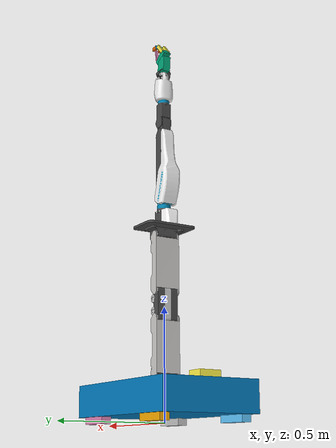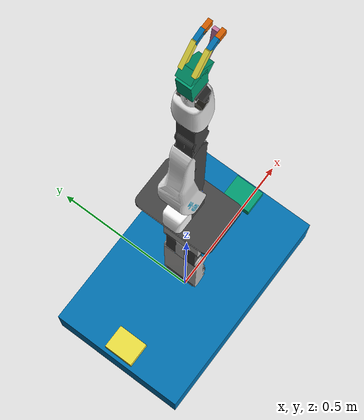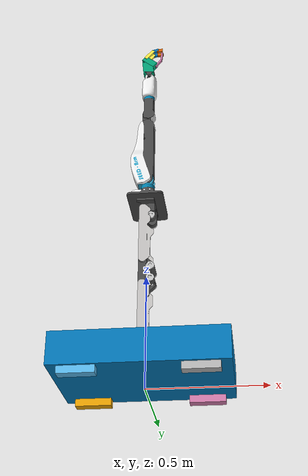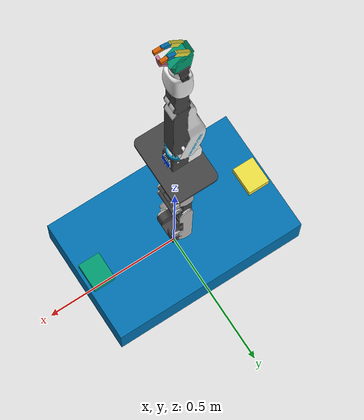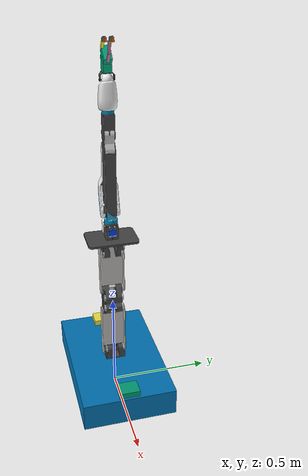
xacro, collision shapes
<?xml version="1.0"?>
<robot name="SEED-Arm-Mover-typeG2" xmlns:xacro="http://ros.org/wiki/xacro">

  <!-- The following included files set up definitions of parts of the robot body -->
  <!-- wraps upperbody and hand-->
  <xacro:include filename="$(find seed_r7_description)/typeg2_arm/arm-upper.urdf.xacro" />
  <!-- wraps lifter and wheels-->
  <xacro:include filename="$(find seed_r7_description)/typeg/noid-wheels.urdf.xacro" />

 <!-- Now we can start using the macros included above to define the actual robot -->
 <xacro:arm-upper/>
 <xacro:noid-wheels base_link="base_link"/>

<!-- gazebo settings -->
 <!-- camera -->
<xacro:property  name="camera_name" value="front_camera"/>
<link name="${camera_name}_depth_optical_frame"/>
<joint name="${camera_name}_depth_optical_joint" type="fixed">
  <origin xyz="0 0 0" rpy="${-M_PI/2} 0 ${-M_PI/2}" />
  <parent link="${camera_name}_link" />
  <child link="${camera_name}_depth_optical_frame" />
</joint>
<xacro:gazebo_depth_camera link_name="${camera_name}_link"
                      frame_name="${camera_name}_depth_optical_frame"
                      camera_name="${camera_name}"/>

<xacro:property  name="camera_name" value="rear_camera"/>
<link name="${camera_name}_depth_optical_frame"/>
<joint name="${camera_name}_depth_optical_joint" type="fixed">
  <origin xyz="0 0 0" rpy="${-M_PI/2} 0 ${-M_PI/2}" />
  <parent link="${camera_name}_link" />
  <child link="${camera_name}_depth_optical_frame" />
</joint>
<xacro:gazebo_depth_camera link_name="${camera_name}_link"
                      frame_name="${camera_name}_depth_optical_frame"
                      camera_name="${camera_name}"/>

 <!-- laser -->
 <xacro:gazebo_laser_sensor link_name="wheels_base_laser_link"
                            frame_name="wheels_base_laser_link" />

 <!-- joint control -->
 <xacro:gazebo_trajectory_controller />

 <!-- mobile base -->
 <xacro:gazebo_base_controller base_frame="base_link" />

 <!-- mimic joints -->
 <gazebo>
   <plugin name="mimic_updater" filename="libmimic_plugin.so">
     <!-- lifter -->
     <mimic joint="knee_joint"  offset="0.0" multiplier="-1.0"
            P="1000" I="0.01" D="1" i_max="0" i_min="0"
            command_max="50" command_min="-50" velocity="true">
       knee_joint_mimic
     </mimic>
     <mimic joint="ankle_joint"  offset="0.0" multiplier="-1.0"
            P="1000" I="0.01" D="1" i_max="0" i_min="0"
            command_max="50" command_min="-50" velocity="true">
       ankle_joint_mimic
     </mimic>
     <!-- lifter(dummy) -->
     <mimic joint="knee_joint"  offset="0.0" multiplier="-1.0"
            P="100" I="0.01" D="1" i_max="0" i_min="0"
            command_max="50" command_min="-50" velocity="true">
       knee_joint_dummy
     </mimic>
     <mimic joint="ankle_joint"  offset="0.0" multiplier="1.0"
            P="100" I="0.01" D="1" i_max="0" i_min="0"
            command_max="50" command_min="-50"  velocity="true">
       ankle_joint_dummy
     </mimic>
     <!-- hand -->
     <mimic joint="r_thumb_joint"  offset="0.0" multiplier="-1.0"
            P="10" I="0.0" D="1" i_max="0" i_min="0"
            command_max="50" command_min="-50" velocity="true">
       r_indexbase_joint
     </mimic>
    <!-- elbow -->
     <mimic joint="elbow_joint"  offset="0.0" multiplier="-1.0"
            P="10" I="0.01" D="1" i_max="0" i_min="-0"
            command_max="50" command_min="-50" velocity="true">
       elbow_joint_mimic
     </mimic>

     <mimic joint="elbow_joint"  offset="0.0" multiplier="0.591"
            P="10" I="0.01" D="1" i_max="0" i_min="-0"
            command_max="50" command_min="-50" velocity="true">
       elbow_middle_joint
     </mimic>

     <mimic joint="elbow_joint"  offset="0.0" multiplier="0.409"
            P="10" I="0.01" D="1" i_max="0" i_min="-0"
            command_max="50" command_min="-50" velocity="true">
       elbow_middle_joint_mimic
     </mimic>

   </plugin>
 </gazebo>

</robot>

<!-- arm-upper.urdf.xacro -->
<!-- XML namespaces -->
<robot name="arm-upper" xmlns:xacro="http://ros.org/wiki/xacro">

  <xacro:include filename="$(find seed_r7_description)/urdf/typeG2_arm/typeg2_arm.urdf.xacro" />
  <xacro:include filename="$(find seed_r7_description)/urdf/trx_s/trx_s.urdf.xacro" />

  <xacro:macro name="arm-upper" params="disable_mesh:=false">

  <xacro:arm_upper base_link="waist_link" r_hand_link="r_hand_link" disable_mesh="${disable_mesh}"/>

  <xacro:trx_s prefix="r" reflect="1" disable_mesh="${disable_mesh}"/>

  <joint name="upper_lower_connector" type="fixed">
    <parent link="lifter_top_link"/>
    <child link="waist_link"/>
    <origin xyz="0.0 0.0 0.0" rpy="0 0 0 "/>
  </joint>

  </xacro:macro>

</robot>

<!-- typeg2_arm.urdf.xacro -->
<!-- XML namespaces -->
<robot name="arm_upper" xmlns:xacro="http://ros.org/wiki/xacro">

  <xacro:include filename="$(find seed_r7_description)/urdf/gazebo.xacro" />

  <xacro:macro name="arm_upper" params="base_link disable_mesh:=false r_hand_link:=r_hand_link">
  <!-- ============================   typeG2_arm   ============================ -->
  <link name="${base_link}">
    <xacro:unless value="${disable_mesh}"> <visual>
      <origin xyz="0 0 0" rpy="0 0 0"/>
      <geometry>
        <mesh filename="package://seed_r7_description/meshes/typeG2_arm/waist_link.dae" scale="1 1 1" />
      </geometry>
    </visual> </xacro:unless>
    <xacro:unless value="${disable_mesh}"> <collision>
      <origin xyz="0 0 0" rpy="0 0 0"/>
      <geometry>
        <mesh filename="package://seed_r7_description/meshes/typeG2_arm/waist_link.dae" scale="1 1 1" />
      </geometry>
    </collision> </xacro:unless>
    <inertial>
      <mass value="1.585" />
      <origin xyz="-0.003 0 0.028" rpy="0 0 0"/>
      <inertia ixx="0.006" ixy="0" ixz="0" iyy="0.004" iyz="0" izz="0.006"/>
    </inertial>
  </link>
  <xacro:gazebo_link_reference link_name="${base_link}" />

  <link name="shoulder_link">
    <xacro:unless value="${disable_mesh}"> <visual>
      <origin xyz="0 0 0" rpy="0 0 0"/>
      <geometry>
        <mesh filename="package://seed_r7_description/meshes/typeG2_arm/shoulder_link.dae" scale="1 1 1" />
      </geometry>
    </visual> </xacro:unless>
    <xacro:unless value="${disable_mesh}"> <collision>
      <origin xyz="0 0 0" rpy="0 0 0"/>
      <geometry>
        <mesh filename="package://seed_r7_description/meshes/typeG2_arm/shoulder_link.dae" scale="1 1 1" />
      </geometry>
    </collision> </xacro:unless>
    <inertial>
      <mass value="0.264" />
      <origin xyz="-0.017 0 0.033" rpy="0 0 0"/>
      <inertia ixx="0.000166" ixy="0" ixz="0" iyy="0.000239" iyz="0" izz="0.000211"/>
    </inertial>
  </link>
  <xacro:gazebo_link_reference link_name="shoulder_link" />

  <link name="upperarm_link">
    <xacro:unless value="${disable_mesh}"> <visual>
      <origin xyz="0 0 0" rpy="0 0 0"/>
      <geometry>
        <mesh filename="package://seed_r7_description/meshes/typeG2_arm/upperarm_link.dae" scale="1 1 1" />
      </geometry>
    </visual> </xacro:unless>
    <xacro:unless value="${disable_mesh}"> <collision>
      <origin xyz="0 0 0" rpy="0 0 0"/>
      <geometry>
        <mesh filename="package://seed_r7_description/meshes/typeG2_arm/upperarm_link.dae" scale="1 1 1" />
      </geometry>
    </collision> </xacro:unless>
    <inertial>
     <mass value="1.766" />
      <origin xyz="-0.017 0 0.151" rpy="0 0 0"/>
      <inertia ixx="0.011" ixy="0" ixz="0" iyy="0.011" iyz="0" izz="0.001"/>
    </inertial>
  </link>
  <xacro:gazebo_link_reference link_name="upperarm_link" />

  <link name="elbow_virtual_link">
    <inertial>
      <mass value="0.001" />
      <origin xyz="0 0 0" rpy="0 0 0"/>
      <inertia ixx="0.00001" ixy="0" ixz="0" iyy="0.00001" iyz="0" izz="0.00001"/>
    </inertial>
  </link>
  <xacro:gazebo_link_reference link_name="elbow_virtual_link" />

  <link name="elbow_virtual_link_dummy">
    <inertial>
      <mass value="0.001" />
      <origin xyz="0 0 0" rpy="0 0 0"/>
      <inertia ixx="0.00001" ixy="0" ixz="0" iyy="0.00001" iyz="0" izz="0.00001"/>
    </inertial>
  </link>
  <xacro:gazebo_link_reference link_name="elbow_virtual_link_dummy" />

  <link name="elbow_middle_link">
    <xacro:unless value="${disable_mesh}"> <visual>
      <origin xyz="0 0 0" rpy="0 0 0"/>
      <geometry>
        <mesh filename="package://seed_r7_description/meshes/typeG2_arm/elbow_middle_link.dae" scale="1 1 1" />
      </geometry>
    </visual> </xacro:unless>
    <xacro:unless value="${disable_mesh}"> <collision>
      <origin xyz="0 0 0" rpy="0 0 0"/>
      <geometry>
        <mesh filename="package://seed_r7_description/meshes/typeG2_arm/elbow_middle_link.dae" scale="1 1 1" />
      </geometry>
    </collision> </xacro:unless>
    <inertial>
      <mass value="0.305" />
      <origin xyz="-0.010 0 0.025" rpy="0 0 0"/>
      <inertia ixx="0.000454" ixy="0" ixz="0" iyy="0.000451" iyz="0" izz="0.000141"/>
    </inertial>
  </link>
  <xacro:gazebo_link_reference link_name="elbow_middle_link" />

  <link name="elbow_link">
    <xacro:unless value="${disable_mesh}"> <visual>
      <origin xyz="0 0 0" rpy="0 0 0"/>
      <geometry>
        <mesh filename="package://seed_r7_description/meshes/typeG2_arm/elbow_link.dae" scale="1 1 1" />
      </geometry>
    </visual> </xacro:unless>
    <xacro:unless value="${disable_mesh}"> <collision>
      <origin xyz="0 0 0" rpy="0 0 0"/>
      <geometry>
        <mesh filename="package://seed_r7_description/meshes/typeG2_arm/elbow_link.dae" scale="1 1 1" />
      </geometry>
    </collision> </xacro:unless>
    <inertial>
      <mass value="0.470" />
      <origin xyz="0 0 0.069" rpy="0 0 0"/>
      <inertia ixx="0.000464" ixy="0" ixz="0" iyy="0.00045" iyz="0" izz="0.000168"/>
    </inertial>
  </link>
  <xacro:gazebo_link_reference link_name="elbow_link" />

  <link name="forearm_link">
    <parent link="forearm_link"/>
    <child  link="wrist_r_link"/>
    <xacro:unless value="${disable_mesh}"> <visual>
      <origin xyz="0 0 0" rpy="0 0 0"/>
      <geometry>
        <mesh filename="package://seed_r7_description/meshes/typeG2_arm/forearm_link.dae" scale="1 1 1" />
      </geometry>
    </visual> </xacro:unless>
    <xacro:unless value="${disable_mesh}"> <collision>
      <origin xyz="0 0 0" rpy="0 0 0"/>
      <geometry>
        <mesh filename="package://seed_r7_description/meshes/typeG2_arm/forearm_link.dae" scale="1 1 1" />
      </geometry>
    </collision> </xacro:unless>
    <inertial>
      <mass value="0.599" />
      <origin xyz="0 0 0.04" rpy="0 0 0"/>
      <inertia ixx="0.000739" ixy="0" ixz="0" iyy="0.000538" iyz="0" izz="0.000370"/>
    </inertial>
  </link>
  <xacro:gazebo_link_reference link_name="forearm_link" />

  <link name="wrist_r_link">
    <xacro:unless value="${disable_mesh}"> <visual>
      <origin xyz="0 0 0" rpy="0 0 0"/>
      <geometry>
        <mesh filename="package://seed_r7_description/meshes/typeG2_arm/wrist_r_link.dae" scale="1 1 1" />
      </geometry>
    </visual> </xacro:unless>
    <xacro:unless value="${disable_mesh}"> <collision>
      <origin xyz="0 0 0" rpy="0 0 0"/>
      <geometry>
        <mesh filename="package://seed_r7_description/meshes/typeG2_arm/wrist_r_link.dae" scale="1 1 1" />
      </geometry>
    </collision> </xacro:unless>
    <inertial>
      <mass value="0.012972" />
      <origin xyz="0 0 0" rpy="0 0 0"/>
      <inertia ixx="0.00001" ixy="0" ixz="0" iyy="0.00001" iyz="0" izz="0.00001"/>
    </inertial>
  </link>
  <xacro:gazebo_link_reference link_name="wrist_r_link" />

  <link name="wrist_p_link">
    <xacro:unless value="${disable_mesh}"> <visual>
      <origin xyz="0 0 0" rpy="0 0 0"/>
      <geometry>
        <mesh filename="package://seed_r7_description/meshes/typeG2_arm/wrist_p_link.dae" scale="1 1 1" />
      </geometry>
    </visual> </xacro:unless>
    <xacro:unless value="${disable_mesh}"> <collision>
      <origin xyz="0 0 0" rpy="0 0 0"/>
      <geometry>
        <mesh filename="package://seed_r7_description/meshes/typeG2_arm/wrist_p_link.dae" scale="1 1 1" />
      </geometry>
    </collision> </xacro:unless>
    <inertial>
      <mass value="0.022908" />
      <origin xyz="0 0 0.021" rpy="0 -0 0"/>
      <inertia ixx="0.00001" ixy="0" ixz="0" iyy="0.00001" iyz="0" izz="0.00001"/>
    </inertial>
  </link>
  <xacro:gazebo_link_reference link_name="wrist_p_link" />

  <joint name="shoulder_y_joint" type="revolute">
    <parent link="${base_link}"/>
    <child  link="shoulder_link"/>
    <origin xyz="0 0 0.1035" rpy="0 0 0 "/>
    <axis   xyz="0 0 1"/>-->
    <!-- from -120 to 120 degrees-->
    <limit lower="-2.09" upper="2.09" effort="10" velocity="1.2" />
    <dynamics damping="0.2" friction="0" />
  </joint>
  <xacro:gazebo_transmission joint_name="shoulder_y_joint" />

  <joint name="shoulder_p_joint" type="revolute">
    <parent link="shoulder_link"/>
    <child  link="upperarm_link"/>
    <origin xyz="0.0 0.0 0.028" rpy="0 0 0 "/>
    <axis   xyz="0 1 0"/>
    <!-- from 0 to 90 degrees-->
    <limit lower="0" upper="1.57" effort="10" velocity="0.6" />
    <dynamics damping="0.2" friction="0" />
  </joint>
  <xacro:gazebo_transmission joint_name="shoulder_p_joint" />

  <joint name="elbow_joint" type="revolute">
    <parent link="upperarm_link"/>
    <child  link="elbow_virtual_link"/>
    <origin xyz="0.0 0.0 0.3" rpy="0 0 0 "/>
    <axis   xyz="0 1 0"/>
    <!-- from 0 to 180 degrees-->
    <limit lower="0" upper="3.14" effort="10" velocity="1.2" />
    <dynamics damping="0.2" friction="0" />
  </joint>
  <xacro:gazebo_transmission joint_name="elbow_joint" />

  <joint name="elbow_joint_mimic" type="continuous">
    <parent link="elbow_virtual_link"/>
    <child  link="elbow_virtual_link_dummy"/>
    <origin xyz="0.0 0 0" rpy="0 0 0 "/>
    <axis   xyz="0 1 0"/>
    <mimic joint="elbow_joint" multiplier="-1" offset="0" />
  </joint>

  <joint name="elbow_middle_joint" type="continuous">
    <parent link="elbow_virtual_link_dummy"/>
    <child  link="elbow_middle_link"/>
    <origin xyz="0.0 0 0" rpy="0 0 0 "/>
    <axis   xyz="0 1 0"/>
    <mimic joint="elbow_joint" multiplier="0.5" offset="0" />
  </joint>

  <joint name="elbow_middle_joint_mimic" type="continuous">
    <parent link="elbow_middle_link"/>
    <child  link="elbow_link"/>
    <origin xyz="0.0 0 0.07" rpy="0 0 0 "/>
    <axis   xyz="0 1 0"/>
    <mimic joint="elbow_joint" multiplier="0.5" offset="0" />
  </joint>

  <joint name="wrist_y_joint" type="revolute">
    <parent link="elbow_link"/>
    <child  link="forearm_link"/>
    <origin xyz="0.0 0 0.1095" rpy="0 0 0 "/>
    <axis   xyz="0 0 1"/>
    <!-- from -120 to 120 degrees-->
    <limit lower="-2.09" upper="2.09" effort="10" velocity="1.3" />
    <dynamics damping="0.2" friction="0" />
  </joint>
  <xacro:gazebo_transmission joint_name="wrist_y_joint" />

  <joint name="wrist_r_joint" type="revolute">
    <parent link="forearm_link"/>
    <child  link="wrist_r_link"/>
    <origin xyz="0.0 0 0.120" rpy="0 0 0 "/>
    <axis   xyz="1 0 0"/>
    <!-- from -7 to 7 degrees-->
    <limit lower="-0.12" upper="0.12" effort="10" velocity="1.05" />
    <dynamics damping="0.2" friction="0" />
  </joint>
  <xacro:gazebo_transmission joint_name="wrist_r_joint" />

  <joint name="wrist_p_joint" type="revolute">
    <parent link="wrist_r_link"/>
    <child  link="wrist_p_link"/>
    <origin xyz="0 0 0" rpy="0 0 0 "/>
    <axis   xyz="0 1 0"/>
    <!-- from -90 to 20 degrees-->
    <limit lower="-1.57" upper="0.34" effort="10" velocity="1.4" />
    <dynamics damping="0.2" friction="0" />
  </joint>
  <xacro:gazebo_transmission joint_name="wrist_p_joint" />

  <joint name="wrist_connector" type="fixed">
    <parent link="wrist_p_link"/>
    <child  link="${r_hand_link}"/>
    <origin xyz="0 0 0.004" rpy="-3.141592 0 1.5707 "/>
  </joint>

  </xacro:macro>

</robot>

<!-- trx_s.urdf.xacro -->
<!-- XML namespaces -->
<robot name="trx_s" xmlns:xacro="http://ros.org/wiki/xacro">

  <xacro:property name="M_PI" value="3.1415926535897931" />
  <xacro:include filename="$(find seed_r7_description)/urdf/gazebo.xacro" />

  <xacro:macro name="trx_s" params="prefix:=r reflect:=1 disable_mesh:=false">
  <!-- ============================   Hand(trx_s)   ============================ -->
    <!-- prefix is "r" or "l" -->
    <!-- reflect=1 is rightside, reflect=-1 is leftside -->

  <link name="${prefix}_hand_link">
    <xacro:unless value="${disable_mesh}"> <visual>
      <origin xyz="0 0 0" rpy="0 -0 ${(1.0 - reflect) * M_PI / 2.0}"/>
      <geometry>
        <mesh filename="package://seed_r7_description/meshes/trx_s/RARM_LINK7_mesh.dae" scale="1 1 1" />
      </geometry>
    </visual> </xacro:unless>
    <xacro:unless value="${disable_mesh}">
    <collision>
      <origin rpy="${reflect * 0.7} 0 0" xyz="0 0 -0.093"/>
      <geometry>
        <box size="0.036 0.070 0.030" />
      </geometry>
    </collision>
    <collision>
      <origin rpy="${reflect * -0.10} 0 0" xyz="0 ${reflect * -0.007} -0.055"/>
      <geometry>
        <box size="0.036 0.050 0.070" />
      </geometry>
    </collision>
    </xacro:unless>
    <inertial>
      <mass value="0.183" />
      <origin xyz="0 0 -0.0875" rpy="0 -0 0"/>
      <inertia ixx="0.000601" ixy="0" ixz="0" iyy="0.00055" iyz="0" izz="0.000102"/>
    </inertial>
  </link>
  <xacro:gazebo_link_reference link_name="${prefix}_hand_link" />

  <link name="${prefix}_indexbase_link">
    <xacro:unless value="${disable_mesh}"> <visual>
      <origin xyz="0 ${0.013 * reflect} 0.115" rpy="0 -0 ${(1.0 - reflect) * M_PI / 2.0}"/>
      <geometry>
        <mesh filename="package://seed_r7_description/meshes/trx_s/RARM_INDEX_LINK1_mesh.dae" scale="1 1 1" />
      </geometry>
    </visual> </xacro:unless>
    <xacro:unless value="${disable_mesh}"> <collision>
      <origin xyz="0.015 ${reflect * 0.013494 } -0.021422" rpy="${reflect * -0.85} 0 0"/>
      <geometry>
        <box size="0.01 0.061 0.016" />
      </geometry>
    </collision>
    <collision>
      <origin xyz="-0.015 ${reflect * 0.013494 } -0.021422" rpy="${reflect * -0.85} 0 0"/>
      <geometry>
        <box size="0.01 0.061 0.016" />
      </geometry>
    </collision> </xacro:unless>
    <inertial>
      <mass value="0.1" />
      <origin xyz="0 ${reflect * 0.014} -0.021" rpy="0 0 0"/>
      <inertia ixx="0.001" iyy="0.0001" izz="0.0001" ixy="0" ixz="0" iyz="0" />
    </inertial>
  </link>
  <xacro:gazebo_link_reference link_name="${prefix}_indexbase_link" />

  <link name="${prefix}_indexmid_link">
    <xacro:unless value="${disable_mesh}"> <visual>
      <origin xyz="0 ${-0.015754 * reflect} 0.149615" rpy="0 -0 ${(1.0 - reflect) * M_PI / 2.0}"/>
      <geometry>
        <mesh filename="package://seed_r7_description/meshes/trx_s/RARM_INDEX_LINK2_mesh.dae" scale="1 1 1" />
      </geometry>
    </visual> </xacro:unless>
    <xacro:unless value="${disable_mesh}"> <collision>
      <origin xyz="0.015 ${reflect * 0.014} -0.008" rpy="${reflect * -0.3} 0 0"/>
      <geometry>
        <box size="0.01 0.030 0.016" />
      </geometry>
    </collision>
    <collision>
      <origin xyz="-0.015 ${reflect * 0.014} -0.008" rpy="${reflect * -0.3} 0 0"/>
      <geometry>
        <box size="0.01 0.030 0.016" />
      </geometry>
    </collision> </xacro:unless>
    <inertial>
      <mass value="0.1" />
      <origin xyz="0 ${reflect * 0.014} -0.008" rpy="0 0 0"/>
      <inertia ixx="0.001" iyy="0.0001" izz="0.0001" ixy="0" ixz="0" iyz="0" />
    </inertial>
  </link>
  <xacro:gazebo_link_reference link_name="${prefix}_indexmid_link" />

  <link name="${prefix}_indexend_link">
    <xacro:unless value="${disable_mesh}"> <visual>
      <origin xyz="0 ${-0.03747 * reflect} 0.162972" rpy="0 -0 ${(1.0 - reflect) * M_PI / 2.0}"/>
      <geometry>
        <mesh filename="package://seed_r7_description/meshes/trx_s/RARM_INDEX_LINK3_mesh.dae" scale="1 1 1" />
      </geometry>
    </visual> </xacro:unless>
    <xacro:unless value="${disable_mesh}"> <collision>
      <origin xyz="0.015 ${reflect * 0.013} 0.004" rpy="0 0 0"/>
      <geometry>
        <box size="0.01 0.028 0.016" />
      </geometry>
    </collision>
    <collision>
      <origin xyz="-0.015 ${reflect * 0.013} 0.004" rpy="0 0 0"/>
      <geometry>
        <box size="0.01 0.028 0.016" />
      </geometry>
    </collision> </xacro:unless>
    <inertial>
      <mass value="0.1" />
      <origin xyz="0 ${reflect * 0.02} 0" rpy="0 0 0"/>
      <inertia ixx="0.0001" iyy="0.0001" izz="0.0001" ixy="0" ixz="0" iyz="0" />
    </inertial>
  </link>
  <xacro:gazebo_link_reference link_name="${prefix}_indexend_link" />

  <link name="${prefix}_thumb_link">
    <xacro:unless value="${disable_mesh}"> <visual>
      <origin xyz="0 ${-0.022355 * reflect} 0.079645" rpy="0 -0 ${(1.0 - reflect) * M_PI / 2.0}"/>
      <geometry>
        <mesh filename="package://seed_r7_description/meshes/trx_s/RARM_THUMB_LINK_mesh.dae" scale="1 1 1" />
      </geometry>
    </visual> </xacro:unless>
    <xacro:unless value="${disable_mesh}">
    <collision>
      <origin rpy="${reflect * 0.63} 0 0" xyz="0.0 ${reflect * 0.019645} -0.010355"/>
      <geometry>
        <box size="0.012 0.008 0.050"/>
      </geometry>
    </collision>
    <collision>
      <origin rpy="${reflect * 0.1} 0 0" xyz="0.0 ${reflect * 0.035645} -0.050355"/>
      <geometry>
        <box size="0.012 0.008 0.050"/>
      </geometry>
    </collision>
    </xacro:unless>
    <inertial>
      <mass value="0.1" />
      <origin xyz="0 ${reflect * 0.05} -0.06" rpy="0 0 0"/>
      <inertia ixx="0.001" iyy="0.0001" izz="0.0001" ixy="0" ixz="0" iyz="0" />
    </inertial>
  </link>
  <xacro:gazebo_link_reference link_name="${prefix}_thumb_link" />

  <joint name="${prefix}_indexbase_joint" type="continuous">
    <parent link="${prefix}_hand_link"/>
    <child  link="${prefix}_indexbase_link"/>
    <origin xyz="0 ${-0.013 * reflect} -0.115" rpy="0 -0 0 "/>
    <axis   xyz="1 0 0"/>
    <mimic joint="${prefix}_thumb_joint" multiplier="-1" offset="0"/>
  </joint>

  <joint name="${prefix}_indexmid_joint" type="fixed">
    <parent link="${prefix}_indexbase_link"/>
    <child  link="${prefix}_indexmid_link"/>
    <origin xyz="0 ${0.028754 * reflect} -0.034615" rpy="0 -0 0 "/>
  </joint>

  <joint name="${prefix}_indexend_joint" type="fixed">
    <parent link="${prefix}_indexmid_link"/>
    <child  link="${prefix}_indexend_link"/>
    <origin xyz="0 ${0.021716 * reflect} -0.013357" rpy="0 -0 0 "/>
  </joint>

  <joint name="${prefix}_thumb_joint" type="revolute">
    <parent link="${prefix}_hand_link"/>
    <child  link="${prefix}_thumb_link"/>
    <origin xyz="0 ${0.022355 * reflect} -0.079645" rpy="0 -0 0 "/>
    <axis   xyz="1 0 0"/>
    <limit lower="-1.0" upper="1.0" effort="50" velocity="0.5" />
    <dynamics damping="0.2" friction="0" />
  </joint>
  <xacro:gazebo_transmission joint_name="${prefix}_thumb_joint" />

  <!-- for ik eef link-->
  <link name="${prefix}_eef_grasp_link"/>
  <link name="${prefix}_eef_pick_link"/>
  <link name="${prefix}_thumb_tip_link"/>
  <link name="${prefix}_index_tip_link"/>
  <!-- for ik eef link-->

  <!-- for ik eef connector-->
  <joint name="${prefix}_eef_grasp_joint" type="fixed">
    <parent  link="${prefix}_hand_link"/>
    <child link="${prefix}_eef_grasp_link"/>
    <origin xyz="0.0 ${0.04 * reflect} -0.14" rpy="0 1.5708 0 "/>
  </joint>
  <joint name="${prefix}_eef_pick_joint" type="fixed">
    <parent  link="${prefix}_hand_link"/>
    <child link="${prefix}_eef_pick_link"/>
    <origin xyz="0.0 ${0.07 * reflect} -0.16" rpy="0 1.5708 0 "/>
  </joint>
  <joint name="${prefix}_thumb_tip_joint" type="fixed">
    <parent  link="${prefix}_thumb_link"/>
    <child link="${prefix}_thumb_tip_link"/>
    <origin xyz="0.0 ${0.035 * reflect} -0.085" rpy="0 0 0 "/>
  </joint>
  <joint name="${prefix}_index_tip_joint" type="fixed">
    <parent  link="${prefix}_indexend_link"/>
    <child link="${prefix}_index_tip_link"/>
    <origin xyz="0.0 ${0.02 * reflect} 0.0" rpy="0 0 0 "/>
  </joint>
  <!-- for ik eef connector-->

  </xacro:macro>
</robot>

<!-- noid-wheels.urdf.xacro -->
<!-- XML namespaces -->
<robot name="noid-wheels" xmlns:xacro="http://ros.org/wiki/xacro">

  <xacro:include filename="$(find seed_r7_description)/urdf/typeG_lifter/lifter.urdf.xacro" />
  <xacro:include filename="$(find seed_r7_description)/urdf/typeG_lifter/virtual_lifter.urdf.xacro" />
  <xacro:include filename="$(find seed_r7_description)/urdf/typeG_wheel/wheels.urdf.xacro" />

  <xacro:macro name="noid-wheels" params="base_link virtual_lifter:=false x_max:=0.0 x_min:=0.0 z_max:=0.0 z_min:=0.0 disable_mesh:=false">

    <xacro:wheels base_link="${base_link}" disable_mesh="${disable_mesh}"/>

    <joint name="wheel_lifter_connector" type="fixed">
      <parent  link="wheels_top_link"/>
      <child link="lifter_base_link"/>
      <origin xyz="0.0 0.0 0.0" rpy="0 0 0 "/>
   </joint>

   <xacro:unless value="${virtual_lifter}">
    <xacro:lifter base_link="lifter_base_link"/>
   </xacro:unless>

   <xacro:if value="${virtual_lifter}">
    <xacro:virtual_lifter base_link="lifter_base_link" x_max="${x_max}" x_min="${x_min}" z_max="${z_max}" z_min="${z_min}"/>
   </xacro:if>

  </xacro:macro>

</robot>

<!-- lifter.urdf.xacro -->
<!-- XML namespaces -->
<robot name="lifter" xmlns:xacro="http://ros.org/wiki/xacro">

  <xacro:include filename="$(find seed_r7_description)/urdf/gazebo.xacro" />

  <xacro:macro name="lifter" params="base_link">
  <!-- ============================   (typeG_lifter)   ============================ -->
    <link name="${base_link}">
      <visual>
        <origin xyz="0 0 0" rpy="0 0 0"/>
        <geometry>
          <mesh filename="package://seed_r7_description/meshes/typeG_lifter/lifter_base_link.dae" scale="1 1 1" />
        </geometry>
      </visual>
      <collision>
        <origin xyz="0 0 0" rpy="0 0 0"/>
        <geometry>
          <mesh filename="package://seed_r7_description/meshes/typeG_lifter/lifter_base_link.dae" scale="1 1 1" />
        </geometry>
      </collision>
      <inertial>
        <mass value="7.64604" />
        <origin xyz="-0.012819 -0.002679 0.007207" rpy="0 -0 0"/>
        <inertia ixx="0.0658136" ixy="-0.000159462" ixz="0.010103" iyy="0.0504268" iyz="0.000173435" izz="0.0889772"/>
      </inertial>
    </link>
    <xacro:gazebo_link_reference link_name="${base_link}" />

    <link name="leg_shank_link">
      <visual>
        <origin xyz="0.0 0.0 0" rpy="0 0 0"/>
        <geometry>
          <mesh filename="package://seed_r7_description/meshes/typeG_lifter/leg_shank_link.dae" scale="1 1 1" />
        </geometry>
      </visual>
      <collision>
        <origin xyz="0.0 0.0 0" rpy="0 0 0"/>
        <geometry>
          <mesh filename="package://seed_r7_description/meshes/typeG_lifter/leg_shank_link.dae" scale="1 1 1" />
        </geometry>
      </collision>
      <inertial>
        <mass value="2.06679" />
        <origin xyz="0.051713 0.0 0.146934" rpy="0 -0 0"/>
        <inertia ixx="0.06" ixy="0.0" ixz="0.0" iyy="0.1" iyz="0.0" izz="0.06"/>
      </inertial>
    </link>
    <xacro:gazebo_link_reference link_name="leg_shank_link" />

    <link name="leg_knee_link">
      <visual>
        <origin xyz="0.0 0.0 0" rpy="0 0 0"/>
        <geometry>
          <mesh filename="package://seed_r7_description/meshes/typeG_lifter/leg_knee_link.dae" scale="1 1 1" />
        </geometry>
      </visual>
      <collision>
        <origin xyz="0.0 0.0 0" rpy="0 0 0"/>
        <geometry>
          <mesh filename="package://seed_r7_description/meshes/typeG_lifter/leg_knee_link.dae" scale="1 1 1" />
        </geometry>
      </collision>
      <inertial>
        <mass value="2.06679" />
        <origin xyz="-0.031713 0.0 0.046934" rpy="0 -0 0"/>
        <inertia ixx="0.06" ixy="0.0" ixz="0.0" iyy="0.1" iyz="0.0" izz="0.06"/>
      </inertial>
    </link>
    <xacro:gazebo_link_reference link_name="leg_knee_link" />

    <link name="leg_thigh_link">
      <visual>
        <origin xyz="0 0 0" rpy="0 0 0"/>
        <geometry>
          <mesh filename="package://seed_r7_description/meshes/typeG_lifter/leg_thigh_link.dae" scale="1 1 1" />
        </geometry>
      </visual>
      <collision>
        <origin xyz="0 0 0" rpy="0 0 0"/>
        <geometry>
          <mesh filename="package://seed_r7_description/meshes/typeG_lifter/leg_thigh_link.dae" scale="1 1 1" />
        </geometry>
      </collision>
      <inertial>
        <mass value="2.62321" />
        <origin xyz="-0.0587169 0 0.135292" rpy="0 -0 0"/>
        <inertia ixx="0.0161595" ixy="-9.27234e-05" ixz="0.00262839" iyy="0.0166415" iyz="-0.00017447" izz="0.00477281"/>
      </inertial>
    </link>
    <xacro:gazebo_link_reference link_name="leg_thigh_link" />

    <link name="leg_base_link">
      <visual>
        <origin xyz="0 0 0" rpy="0 0 0"/>
        <geometry>
          <mesh filename="package://seed_r7_description/meshes/typeG_lifter/leg_base_link.dae" scale="1 1 1" />
        </geometry>
      </visual>
      <collision>
        <origin xyz="0 0 0" rpy="0 0 0"/>
        <geometry>
          <mesh filename="package://seed_r7_description/meshes/typeG_lifter/leg_base_link.dae" scale="1 1 1" />
        </geometry>
      </collision>
      <inertial>
        <mass value="7.64604" />
        <origin xyz="-0.012819 -0.002679 0.007207" rpy="0 -0 0"/>
        <inertia ixx="0.0658136" ixy="-0.000159462" ixz="0.010103" iyy="0.0504268" iyz="0.000173435" izz="0.0889772"/>
      </inertial>
    </link>
    <xacro:gazebo_link_reference link_name="leg_base_link" />

    <link name="lifter_top_link"/>
    <xacro:gazebo_link_reference link_name="lifter_top_link" />

    <joint name="lifter_top_connector" type="fixed">
      <parent link="leg_base_link"/>
      <child  link="lifter_top_link"/>
      <origin xyz="0.012 0 0.040" rpy="0 0 0"/>
    </joint>

    <joint name="knee_joint" type="revolute"> <!-- rename "knee_joint_thigh_dummy" -->
      <parent link="leg_knee_link"/>
      <child  link="leg_thigh_link"/>
      <origin xyz="0 0 0.12" rpy="0 0 0"/>
      <axis xyz="0 -1 0"/>
      <limit effort="200" lower="-1.2" upper="0" velocity="0.5"/>
      <dynamics damping="0.2" friction="0" />
    </joint>
    <xacro:gazebo_transmission joint_name="knee_joint" />

    <joint name="ankle_joint" type="revolute">
      <parent link="${base_link}"/>
      <child  link="leg_shank_link"/>
      <origin xyz="-0.012 0 0.035" rpy="0 0 0"/>
      <axis   xyz="0 -1 0"/>
      <limit effort="200" lower="0" upper="1.2" velocity="0.5" />
      <dynamics damping="0.2" friction="0" />
    </joint>
    <xacro:gazebo_transmission joint_name="ankle_joint" />

<!--- mimic joints -->
<!-- requried -->
    <joint name="knee_joint_mimic" type="continuous">
      <parent link="leg_thigh_link"/>
      <child link="leg_base_link"/>
      <origin xyz="0 0 0.25" rpy="0 0 0"/>
      <axis   xyz="0 -1 0"/>
      <mimic joint="knee_joint" multiplier="-1" offset="0"/>
    </joint>

    <joint name="ankle_joint_mimic" type="continuous">
      <parent link="leg_shank_link"/>
      <child  link="leg_knee_link"/>
      <origin xyz="0 0 0.25" rpy="0 0 0"/>
      <axis   xyz="0 -1 0"/>
      <mimic joint="ankle_joint" multiplier="-1" offset="0" />
    </joint>

<!-- redundant -->
    <link name="leg_shank_link_dummy">
      <visual>
        <geometry>
          <mesh filename="package://seed_r7_description/meshes/typeG_lifter/leg_shank_link_dummy.dae" scale="1 1 1" />
        </geometry>
        <origin xyz="0 0 0" rpy="0 0 0"/>
      </visual>
      <inertial> <!-- for gazebo visualization -->
        <mass value="0.4"/>
        <origin rpy="0 0 0" xyz="-0.04 0.0 0.14"/>
        <inertia ixx="0.001" ixy="0" ixz="0" iyy="0.001" iyz="0" izz="0.001"/>
      </inertial>
    </link>
    <link name="leg_thigh_link_dummy">
      <visual>
        <geometry>
          <mesh filename="package://seed_r7_description/meshes/typeG_lifter/leg_thigh_link_dummy.dae" scale="1 1 1" />
        </geometry>
        <origin xyz="0 0 0" rpy="0 0 0"/>
      </visual>
      <inertial> <!-- for gazebo visualization -->
        <mass value="0.4"/>
        <origin rpy="0 0 0" xyz="-0.04 0.0 0.14"/>
        <inertia ixx="0.001" ixy="0" ixz="0" iyy="0.001" iyz="0" izz="0.001"/>
      </inertial>
    </link>

    <joint name="ankle_joint_dummy" type="continuous">
      <parent link="${base_link}"/>
      <child link="leg_shank_link_dummy"/>
      <origin xyz="0.01982 0 0.06682" rpy="0 0 0"/>
      <axis xyz="0 -1 0"/>
      <mimic joint="ankle_joint" multiplier="1" offset="0" />
    </joint>
    <joint name="knee_joint_dummy" type="continuous">
      <parent link="leg_knee_link"/>
      <child link="leg_thigh_link_dummy"/>
      <origin xyz="0.03182 0 0.08818" rpy="0 0 0"/>
      <axis xyz="0 1 0"/>
      <mimic joint="knee_joint" multiplier="-1" offset="0" />
    </joint>

  </xacro:macro>

</robot>

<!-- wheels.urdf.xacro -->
<!-- XML namespaces -->
<robot name="wheels" xmlns:xacro="http://ros.org/wiki/xacro">

  <xacro:include filename="$(find seed_r7_description)/urdf/gazebo.xacro" />

  <xacro:property name="wheel_radius" value="0.075"/>

  <xacro:macro name="wheels" params="base_link disable_mesh:=false">
  <!-- ============================   typeG_wheels  ============================ -->

  <link name="${base_link}"/>

    <link name="wheel_base_link">
      <xacro:unless value="${disable_mesh}"> <visual>
        <origin xyz="0.0 0.0 0.0" rpy="0 -0 0"/>
        <geometry>
          <mesh filename="package://seed_r7_description/meshes/typeG_wheel/wheels_base.dae" scale="1 1 1" />
          </geometry>
      </visual> </xacro:unless>
      <xacro:unless value="${disable_mesh}"> <collision>
        <origin xyz="0.0 0.0 0.025" rpy="0 -0 0"/>
        <geometry>
          <box size="0.72 0.46 0.14" />
        </geometry>
      </collision> </xacro:unless>
      <inertial>
        <mass value="70" />
        <origin xyz="0 0 0.04" rpy="0 -0 0.0"/>
        <inertia ixx="0.528" ixy="0" ixz="0" iyy="2.02" iyz="0" izz="2.35"/>
      </inertial>
    </link>
    <xacro:gazebo_link_reference link_name="wheel_base_link" />

    <link name="wheels_top_link">
      <xacro:unless value="${disable_mesh}"> <visual>
        <origin xyz="0.0 0.0 0.0" rpy="0 -0 0"/>
        <geometry>
          <mesh filename="package://seed_r7_description/meshes/typeG_wheel/wheels_top.dae" scale="1 1 1" />
        </geometry>
      </visual> </xacro:unless>
      <!-- no collision geometry -->
      <inertial>
        <mass value="1" />
        <origin xyz="0 0 0" rpy="0 -0 0"/>
        <inertia ixx="0.528" ixy="0" ixz="0" iyy="2.02" iyz="0" izz="2.35"/>
      </inertial>
    </link>
    <xacro:gazebo_link_reference link_name="wheels_top_link" />

    <link name="wheels_front_left_mecanum">
      <xacro:unless value="${disable_mesh}"> <visual>
        <origin xyz="0.0 0.0 0.0" rpy="-1.57079632679 0 0"/>
        <geometry>
          <mesh filename="package://seed_r7_description/meshes/typeG_wheel/wheels_mecanum.dae" scale="1 1 1" />
        </geometry>
      </visual> </xacro:unless>
      <xacro:unless value="${disable_mesh}"> <collision>
        <origin xyz="0.0 0.0 0.0" rpy="-1.57079632679 0 0"/>
        <geometry>
          <!--cylinder length="0.046" radius="0.076" /-->
          <box size="0.152 0.152 0.046" />
        </geometry>
      </collision> </xacro:unless>
      <inertial>
        <mass value="1" />
        <origin xyz="0 0 0" rpy="0 -0 0"/>
        <inertia ixx="0.528" ixy="0" ixz="0" iyy="2.02" iyz="0" izz="2.35"/>
      </inertial>
    </link>
    <xacro:gazebo_link_reference link_name="wheels_front_left_mecanum" mu1="0.25" mu2="0.25" />

    <link name="wheels_front_right_mecanum">
      <xacro:unless value="${disable_mesh}"> <visual>
        <origin xyz="0.0 0.0 0.0" rpy="-1.57079632679 0 0"/>
        <geometry>
          <mesh filename="package://seed_r7_description/meshes/typeG_wheel/wheels_mecanum.dae" scale="1 1 1" />
        </geometry>
      </visual> </xacro:unless>
      <xacro:unless value="${disable_mesh}"> <collision>
        <origin xyz="0.0 0.0 0.0" rpy="-1.57079632679 0 0"/>
        <geometry>
          <!--cylinder length="0.046" radius="0.076" /-->
          <box size="0.152 0.152 0.046" />
        </geometry>
      </collision> </xacro:unless>
      <inertial>
        <mass value="1" />
        <origin xyz="0 0 0" rpy="0 -0 0"/>
        <inertia ixx="0.528" ixy="0" ixz="0" iyy="2.02" iyz="0" izz="2.35"/>
      </inertial>
    </link>
    <xacro:gazebo_link_reference link_name="wheels_front_left_mecanum" mu1="0.25" mu2="0.25" />

    <link name="wheels_rear_left_mecanum">
      <xacro:unless value="${disable_mesh}"> <visual>
        <origin xyz="0.0 0.0 0.0" rpy="-1.57079632679 0 0"/>
        <geometry>
          <mesh filename="package://seed_r7_description/meshes/typeG_wheel/wheels_mecanum.dae" scale="1 1 1" />
        </geometry>
      </visual> </xacro:unless>
      <xacro:unless value="${disable_mesh}"> <collision>
        <origin xyz="0.0 0.0 0.0" rpy="-1.57079632679 0 0"/>
        <geometry>
          <!--cylinder length="0.046" radius="0.076" /-->
          <box size="0.152 0.152 0.046" />
        </geometry>
      </collision> </xacro:unless>
      <inertial>
        <mass value="1" />
        <origin xyz="0 0 0" rpy="0 -0 0"/>
        <inertia ixx="0.528" ixy="0" ixz="0" iyy="2.02" iyz="0" izz="2.35"/>
      </inertial>
    </link>
    <xacro:gazebo_link_reference link_name="wheels_rear_left_mecanum" mu1="0.25" mu2="0.25" />

    <link name="wheels_rear_right_mecanum">
      <xacro:unless value="${disable_mesh}"> <visual>
        <origin xyz="0.0 0.0 0.0" rpy="-1.57079632679 0 0"/>
        <geometry>
          <mesh filename="package://seed_r7_description/meshes/typeG_wheel/wheels_mecanum.dae" scale="1 1 1" />
        </geometry>
      </visual> </xacro:unless>
      <xacro:unless value="${disable_mesh}"> <collision>
        <origin xyz="0.0 0.0 0.0" rpy="-1.57079632679 0 0"/>
        <geometry>
          <!--cylinder length="0.046" radius="0.076" /-->
          <box size="0.152 0.152 0.046" />
        </geometry>
      </collision> </xacro:unless>
      <inertial>
        <mass value="1" />
        <origin xyz="0 0 0" rpy="0 -0 0"/>
        <inertia ixx="0.528" ixy="0" ixz="0" iyy="2.02" iyz="0" izz="2.35"/>
      </inertial>
    </link>
    <xacro:gazebo_link_reference link_name="wheels_rear_right_mecanum" mu1="0.25" mu2="0.25" />

    <link name="wheels_base_laser_link">
      <xacro:unless value="${disable_mesh}"> <visual>
        <origin xyz="0.0 0.0 0.0" rpy="0 0 0"/>
        <geometry>
          <mesh filename="package://seed_r7_description/meshes/typeG_wheel/wheels_urg.dae" scale="1 1 1" />
        </geometry>
      </visual> </xacro:unless>
      <xacro:unless value="${disable_mesh}"> <collision>
        <origin xyz="0.0 0.0 -0.0124" rpy="0 -0 0"/>
        <geometry>
          <box size="0.08 0.1 0.07" />
        </geometry>
      </collision> </xacro:unless>
      <inertial>
        <mass value="0.2" />
        <origin xyz="0 0 0" rpy="0 -0 0"/>
        <inertia ixx="0.0528" ixy="0" ixz="0" iyy="0.0202" iyz="0" izz="0.0235"/>
      </inertial>
    </link>
    <xacro:gazebo_link_reference link_name="wheels_base_laser_link" />

    <link name="wheels_rear_laser_link">
      <xacro:unless value="${disable_mesh}"> <visual>
        <origin xyz="0.0 0.0 0.0" rpy="0 0 0"/>
        <geometry>
          <mesh filename="package://seed_r7_description/meshes/typeG_wheel/wheels_urg.dae" scale="1 1 1" />
        </geometry>
      </visual> </xacro:unless>
      <xacro:unless value="${disable_mesh}"> <collision>
        <origin xyz="0.0 0.0 -0.0124" rpy="0 -0 0"/>
        <geometry>
          <box size="0.08 0.1 0.07" />
        </geometry>
      </collision> </xacro:unless>
      <inertial>
        <mass value="0.2" />
        <origin xyz="0 0 0" rpy="0 -0 0"/>
        <inertia ixx="0.0528" ixy="0" ixz="0" iyy="0.0202" iyz="0" izz="0.0235"/>
      </inertial>
    </link>
    <xacro:gazebo_link_reference link_name="wheels_rear_laser_link" />

    <joint name="base_link_to_wheel_base_link_connector" type="fixed">
      <parent link="${base_link}"/>
      <child link="wheel_base_link"/>
      <origin xyz="0.0 0.0 ${wheel_radius}" rpy="0 0 0"/>
    </joint>

    <joint name="wheels_body_to_top_connector" type="fixed">
      <parent  link="wheel_base_link"/>
      <child link="wheels_top_link"/>
      <origin xyz="0.0 0.0 0.087" rpy="0 0 0 "/>
    </joint>

    <joint name="wheels_body_to_front_left_mecanum_connector" type="fixed">
      <parent  link="wheel_base_link"/>
      <child link="wheels_front_left_mecanum"/>
      <origin xyz="0.241 0.194759 0" rpy="0 0 0"/>
    </joint>

    <joint name="wheels_body_to_front_right_mecanum_connector" type="fixed">
      <parent  link="wheel_base_link"/>
      <child link="wheels_front_right_mecanum"/>
      <origin xyz="0.241 -0.194759 0" rpy="0 0 0"/>
    </joint>

    <joint name="wheels_body_to_rear_left_mecanum_connector" type="fixed">
      <parent  link="wheel_base_link"/>
      <child link="wheels_rear_left_mecanum"/>
      <origin xyz="-0.241 0.194759 0" rpy="0 0 0"/>
    </joint>

    <joint name="wheels_body_to_rear_right_mecanum_connector" type="fixed">
      <parent  link="wheel_base_link"/>
      <child link="wheels_rear_right_mecanum"/>
      <origin xyz="-0.241 -0.194759 0" rpy="0 0 0"/>
    </joint>

    <joint name="wheels_body_to_base_laser_connector" type="fixed">
      <parent  link="wheel_base_link"/>
      <child link="wheels_base_laser_link"/>
      <origin xyz="0.308 0 0.1014" rpy="0 0 0"/>
    </joint>

    <joint name="wheels_body_to_rear_laser_connector" type="fixed">
      <parent  link="wheel_base_link"/>
      <child link="wheels_rear_laser_link"/>
      <origin xyz="-0.308 0 0.1014" rpy="0 0 -3.141592"/>
    </joint>

    <link name="front_camera_base_link"/>
    <joint name="wheel_base_link_to_front_camera_base_link" type="fixed">
      <parent  link="wheel_base_link"/>
      <child link="front_camera_base_link"/>
      <origin xyz="0.31815 0 0.0185" rpy="0 0 0"/>
    </joint>

    <link name="front_camera_link"/>
    <joint name="front_camera_base_link_to_front_camera_link" type="fixed">
      <parent  link="front_camera_base_link"/>
      <child link="front_camera_link"/>
      <origin xyz="0 0.0325 0.0125" rpy="0 0 0"/>
    </joint>

    <link name="front_camera_right_ir_frame"/>
    <joint name="front_camera_link_to_front_camera_right_ir_link" type="fixed">
      <parent  link="front_camera_link"/>
      <child link="front_camera_right_ir_frame"/>
      <origin xyz="0 -0.05 0" rpy="0 0 0"/>
    </joint>

    <link name="rear_camera_base_link"/>
    <joint name="wheel_base_link_to_rear_camera_base_link" type="fixed">
      <parent  link="wheel_base_link"/>
      <child link="rear_camera_base_link"/>
      <origin xyz="-0.31815 0 0.0185" rpy="0 0 3.1415926538"/>
    </joint>

    <link name="rear_camera_link"/>
    <joint name="rear_camera_base_link_to_rear_camera_link" type="fixed">
      <parent  link="rear_camera_base_link"/>
      <child link="rear_camera_link"/>
      <origin xyz="0 0.0325 0.0125" rpy="0 0 0"/>
    </joint>

    <link name="rear_camera_right_ir_frame"/>
    <joint name="rear_camera_link_to_rear_camera_right_ir_link" type="fixed">
      <parent  link="rear_camera_link"/>
      <child link="rear_camera_right_ir_frame"/>
      <origin xyz="0 -0.05 0" rpy="0 0 0"/>
    </joint>

  </xacro:macro>

</robot>
